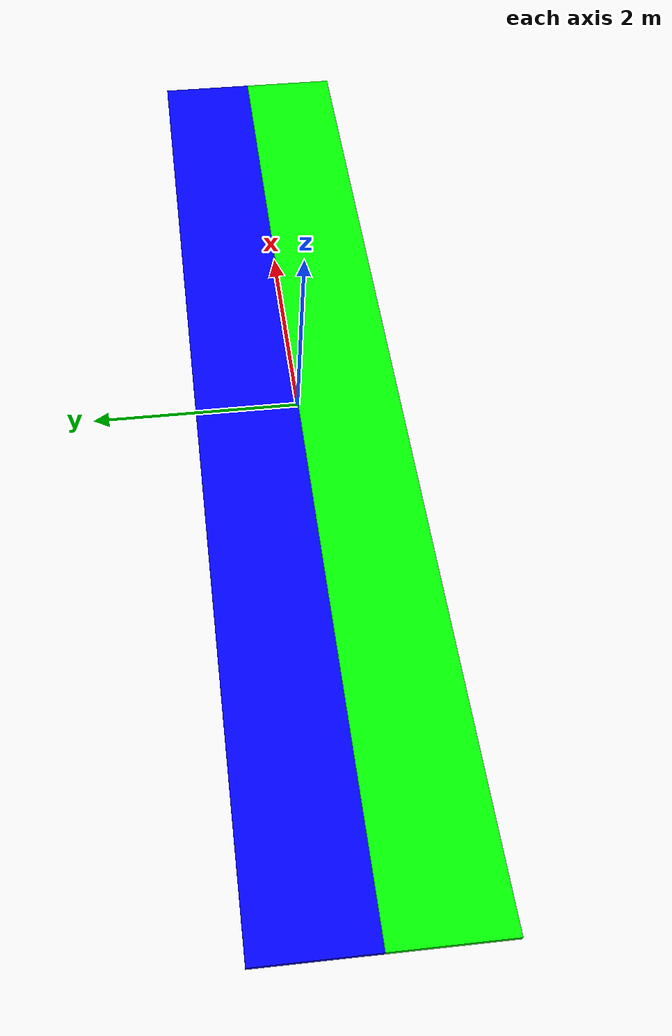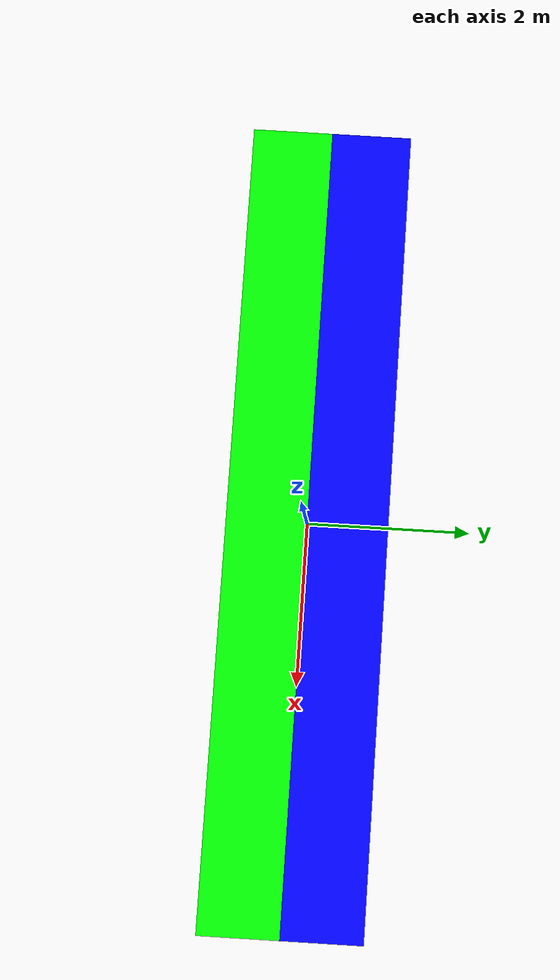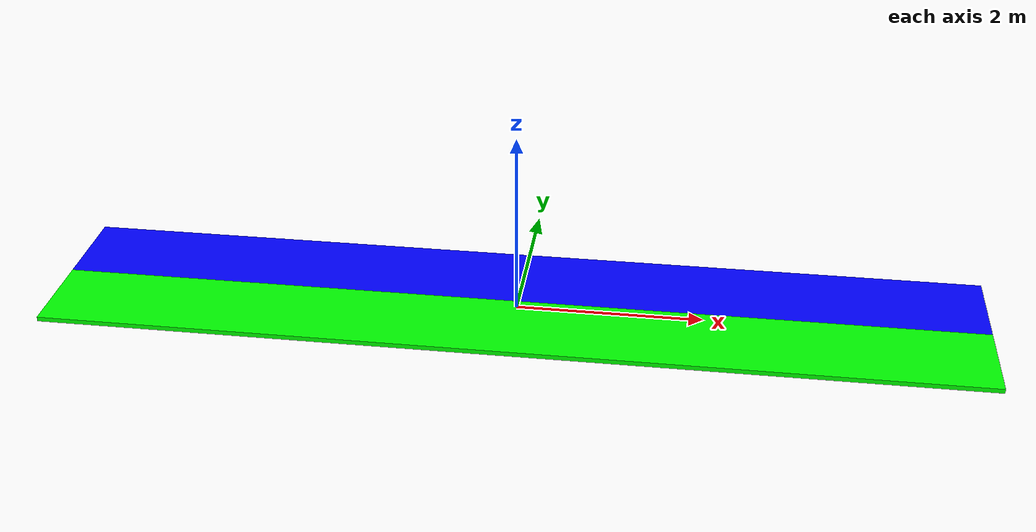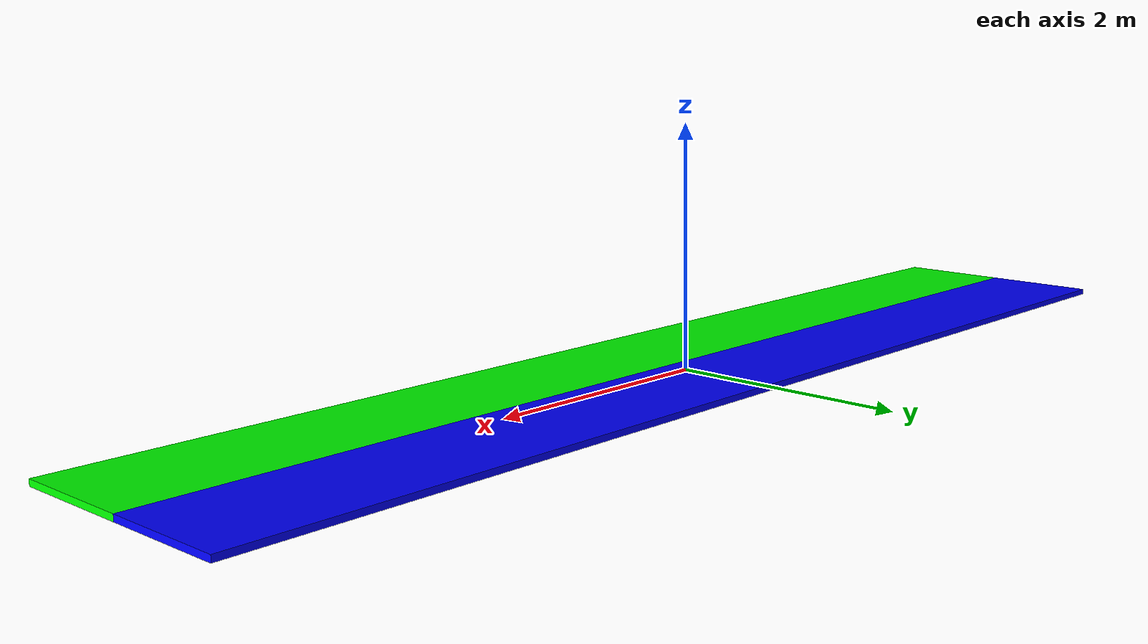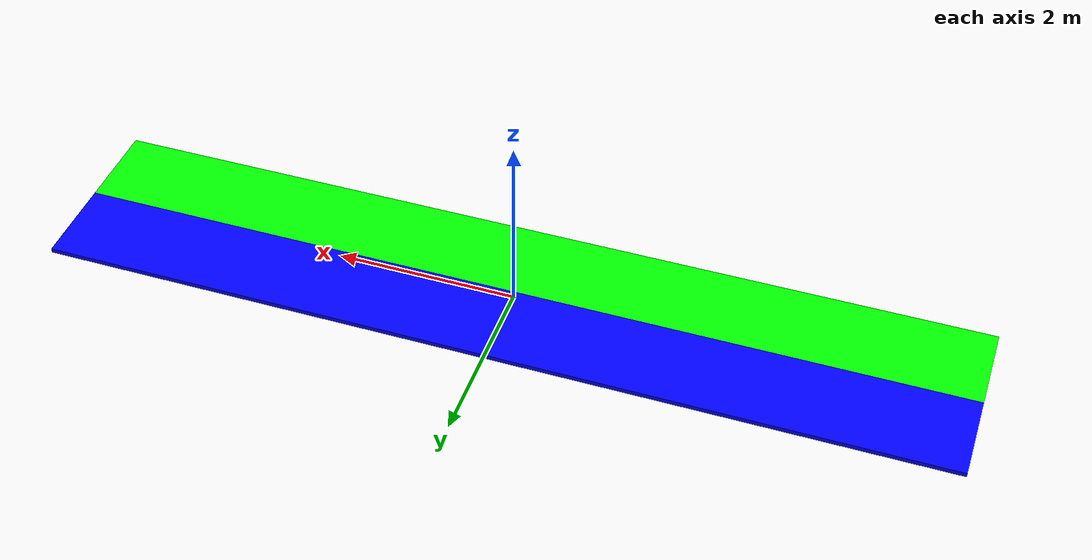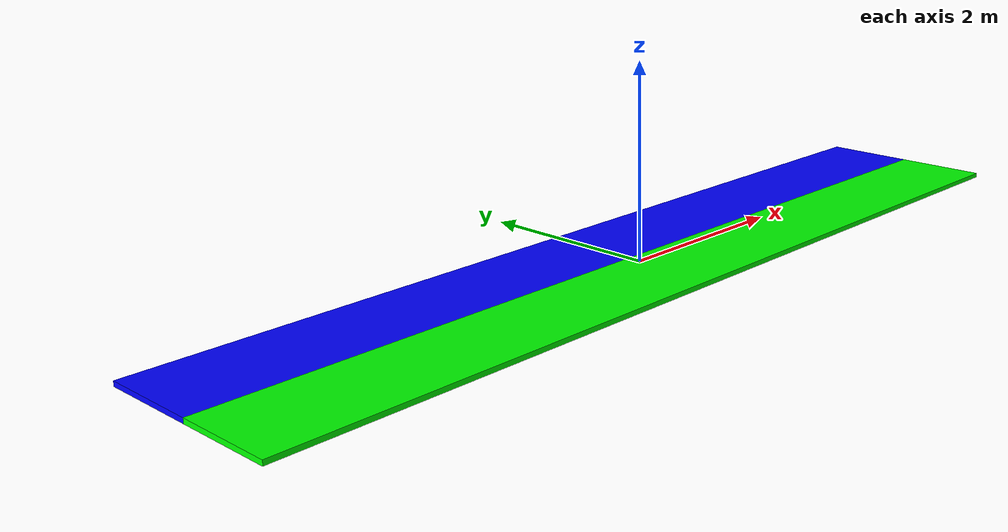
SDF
<?xml version="1.0" encoding="utf-8"?>
<sdf version="1.6">
    <model name="split_belt_treadmill">
        <static>false</static>   <!-- keep the model static -->

        <!-- left belt -->
        <link name="left_belt_visual">
            <pose>0 0.5 0.05 0 0 0</pose>
            <inertial>
                <mass>50.0</mass>
                <inertia>
                    <ixx>10.0</ixx>
                    <iyy>10.0</iyy>
                    <izz>10.0</izz>
                </inertia>
            </inertial>
            <visual name="leftbelt_visual">
                <geometry>
                    <box><size>10 1 0.05</size></box>
                </geometry>
                <material>
                    <ambient>0.0 0.0 1.0 1.0</ambient>  <!-- blue -->
                </material>
            </visual>
            <collision name="left_belt_collision">
                <geometry>
                    <box><size>10 1 0.05</size></box>  <!-- length of X,Y,Z direction -->
                </geometry>
                <surface>
                    <friction>
                        <ode>
                            <mu>1.2</mu>
                            <mu2>1.2</mu2>
                        </ode>
                    </friction>
                </surface>
            </collision>
        </link>

        <!-- right belt -->
        <link name="right_belt_visual">
            <pose>0 -0.5 0.05 0 0 0</pose>
            <inertial>
                <mass>50.0</mass>
                <inertia>
                    <ixx>10.0</ixx>
                    <iyy>10.0</iyy>
                    <izz>10.0</izz>
                </inertia>
            </inertial>
            <visual name="rightbelt_visual">
                <geometry>
                    <box><size>10 1 0.05</size></box>
                </geometry>
                <material>
                    <ambient>0.0 1.0 0.0 1.0</ambient>  <!-- green -->
                </material>
            </visual>
            <collision name="right_belt_collision">
                <geometry>
                    <box><size>10 1 0.05</size></box>
                </geometry>
                <surface>
                    <friction>
                        <ode>
                            <mu>1.2</mu>
                            <mu2>1.2</mu2>
                        </ode>
                    </friction>
                </surface>
            </collision>
        </link>

        <!-- Define the joint for moving -->
        <joint name="left_belt_joint" type="prismatic">
            <parent>world</parent>
            <child>left_belt_moving</child>
            <axis>
                <xyz>1 0 0</xyz>  <!-- along x -->
                <limit>
                    <lower>-1e16</lower>
                    <upper>1e16</upper>
                </limit>
                <dynamics>
                    <damping>0.1</damping>
                </dynamics>
            </axis>
        </joint>

        <joint name="right_belt_joint" type="prismatic">
            <parent>world</parent>
            <child>right_belt_moving</child>
            <axis>
                <xyz>1 0 0</xyz>
                <limit>
                    <lower>-1e16</lower>
                    <upper>1e16</upper>
                </limit>
                <dynamics>
                    <damping>0.1</damping>
                </dynamics>
            </axis>
        </joint>

        <!-- Define the actual moving belts -->
        <link name="left_belt_moving">
            <pose>0 0.5 0.05 0 0 0</pose>
            <inertial>
                <mass>10.0</mass>
                <inertia>
                    <ixx>1.0</ixx>
                    <iyy>1.0</iyy>
                    <izz>1.0</izz>
                </inertia>
            </inertial>
            <collision name="left_belt_moving_collision">
                <geometry>
                    <box><size>100 1 0.01</size></box>
                </geometry>
            </collision>
        </link>

        <link name="right_belt_moving">
            <pose>0 -0.5 0.05 0 0 0</pose>
            <inertial>
                <mass>10.0</mass>
                <inertia>
                    <ixx>1.0</ixx>
                    <iyy>1.0</iyy>
                    <izz>1.0</izz>
                </inertia>
            </inertial>
            <collision name="right_belt_moving_collision">
                <geometry>
                    <box><size>100 1 0.01</size></box>
                </geometry>
            </collision>
        </link>

        <!-- Plugin for Left Conveyor Belt -->
        <plugin name="conveyor_belt_plugin_1" filename="libROSConveyorBeltPlugin.so">
            <robot_namespace>/belt1</robot_namespace>
            <link>left_belt_moving</link>
            <joint>left_belt_joint</joint>
            <power>0.0</power>
            <max_velocity>3.0</max_velocity>
        </plugin>

        <!-- Plugin for Right Conveyor Belt -->
        <plugin name="conveyor_belt_plugin_2" filename="libROSConveyorBeltPlugin.so">
            <robot_namespace>/belt2</robot_namespace>
            <link>right_belt_moving</link>
            <joint>right_belt_joint</joint>
            <power>0.0</power>
            <max_velocity>3.0</max_velocity>
        </plugin>

    </model>
</sdf>
